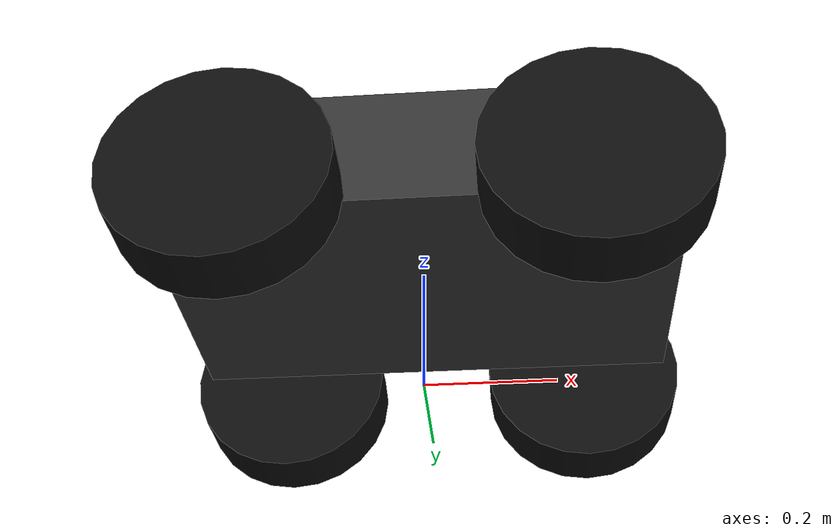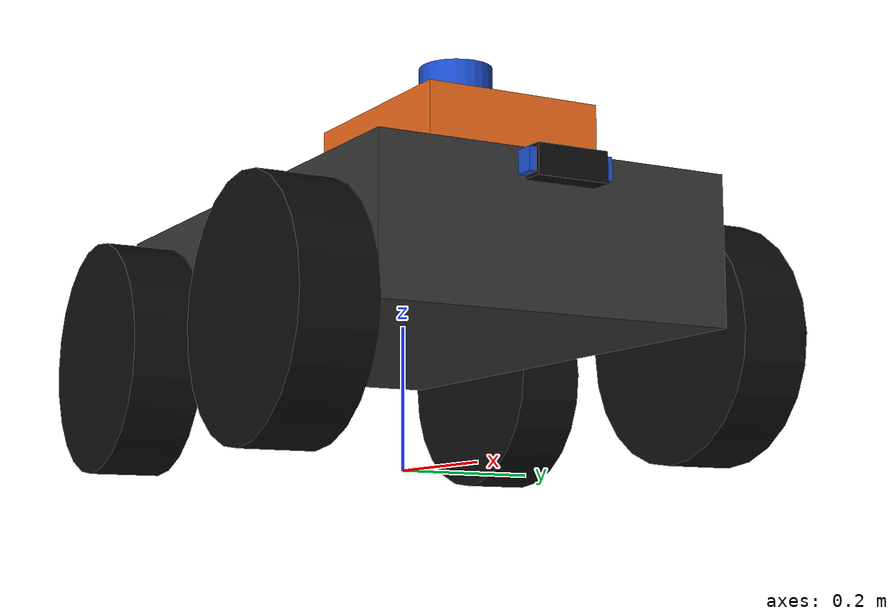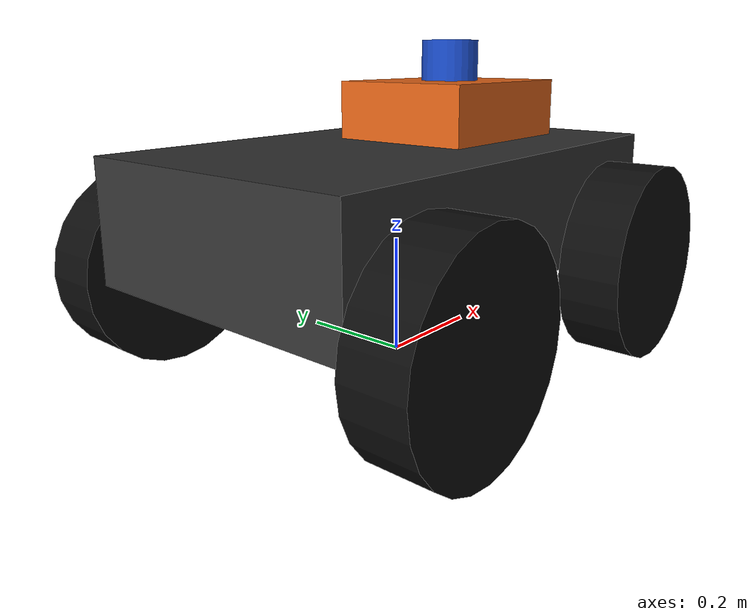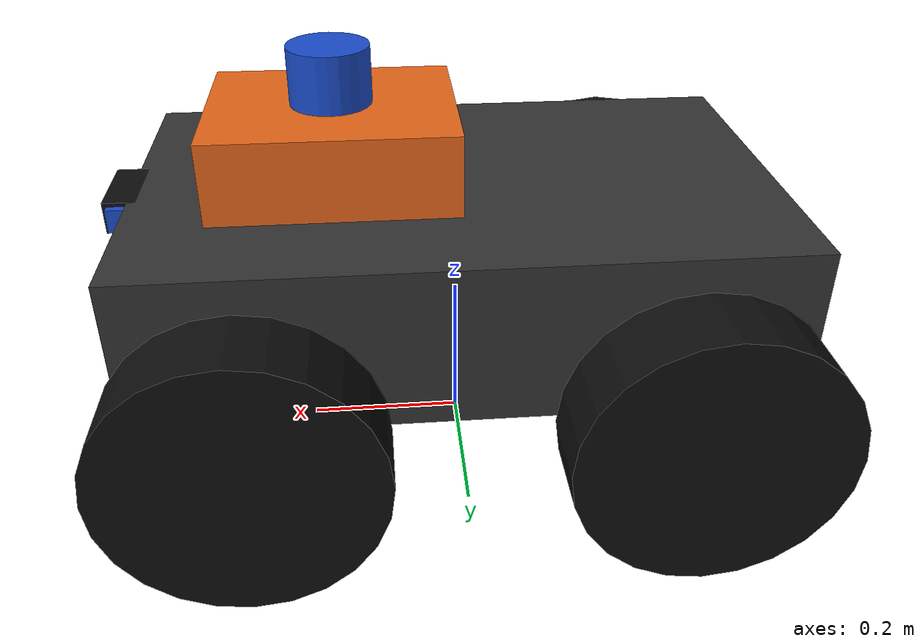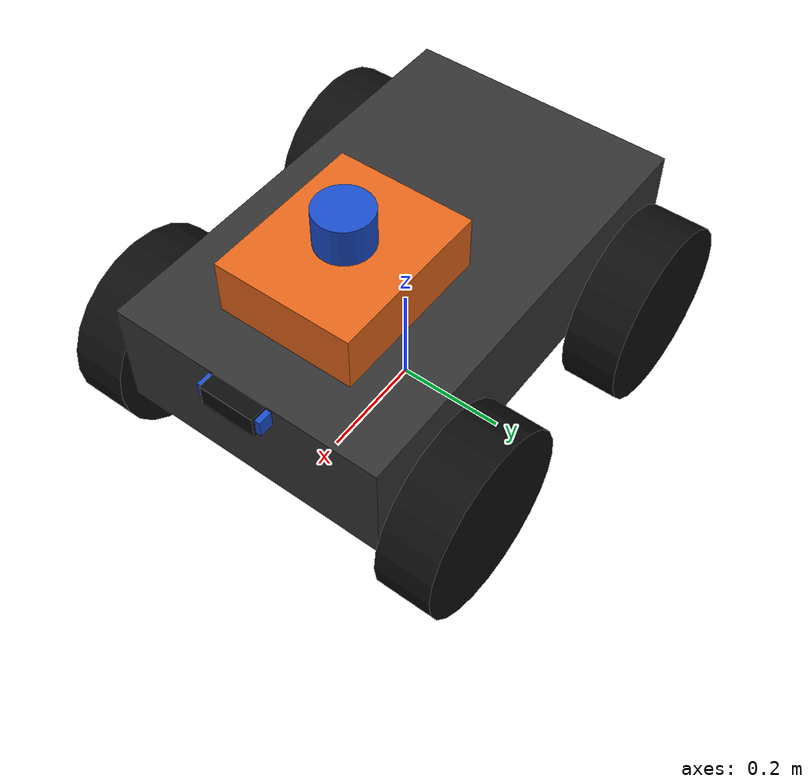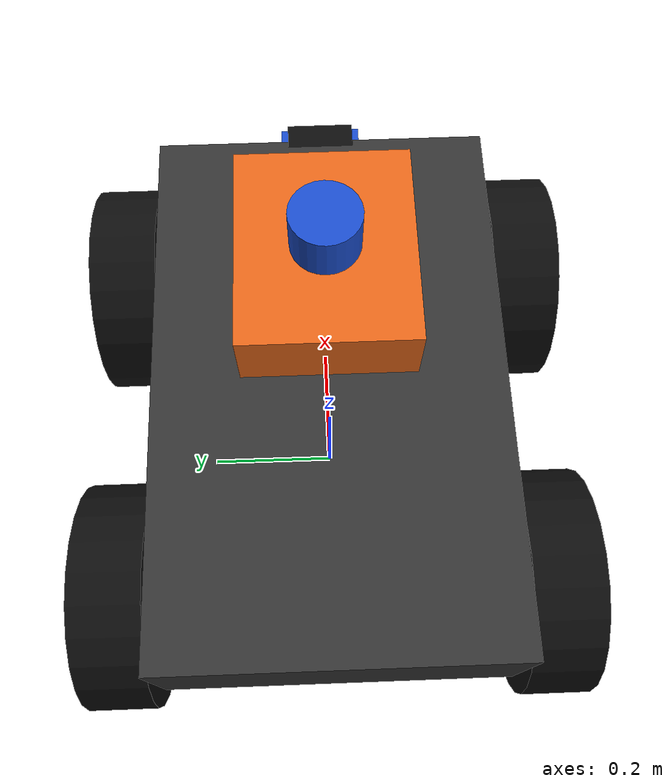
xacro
<?xml version="1.0"?>
<robot name="ugv_robot" xmlns:xacro="http://www.ros.org/wiki/xacro">

  <material name="dark_grey"><color rgba="0.2 0.2 0.2 1.0"/></material>
  <material name="accent_orange"><color rgba="0.9 0.4 0.1 1.0"/></material>
  <material name="black"><color rgba="0.05 0.05 0.05 1.0"/></material>
  <material name="sensor_blue"><color rgba="0.1 0.3 0.8 1.0"/></material>

  <!-- Base footprint & chassis -->
  <link name="base_footprint"/>

  <joint name="base_footprint_joint" type="fixed">
    <parent link="base_footprint"/>
    <child link="base_link"/>
    <origin xyz="0 0 0.165" rpy="0 0 0"/>
  </joint>

  <link name="base_link">
    <inertial>
      <mass value="25.0"/>
      <origin xyz="0 0 0.1" rpy="0 0 0"/>
      <inertia ixx="0.604" ixy="0" ixz="0" iyy="1.416" iyz="0" izz="1.854"/>
    </inertial>
    <visual>
      <origin xyz="0 0 0.1" rpy="0 0 0"/>
      <geometry><box size="0.8 0.5 0.2"/></geometry>
      <material name="dark_grey"/>
    </visual>
    <collision>
      <origin xyz="0 0 0.1" rpy="0 0 0"/>
      <geometry><box size="0.8 0.5 0.2"/></geometry>
    </collision>
    <visual>
      <origin xyz="0.15 0 0.25" rpy="0 0 0"/>
      <geometry><box size="0.3 0.25 0.1"/></geometry>
      <material name="accent_orange"/>
    </visual>
    <collision>
      <origin xyz="0.15 0 0.25" rpy="0 0 0"/>
      <geometry><box size="0.3 0.25 0.1"/></geometry>
    </collision>
  </link>

  <gazebo reference="base_link">
    <material>Gazebo/DarkGrey</material>
  </gazebo>

  <!-- 4 Continuous Wheels -->
  <xacro:macro name="wheel" params="prefix x_reflect y_reflect">
    <link name="${prefix}_wheel_link">
      <inertial>
        <mass value="3.0"/>
        <origin xyz="0 0 0" rpy="0 0 0"/>
        <inertia ixx="0.0229" ixy="0" ixz="0" iyy="0.0229" iyz="0" izz="0.0408"/>
      </inertial>
      <visual>
        <origin xyz="0 0 0" rpy="${pi/2} 0 0"/>
        <geometry><cylinder radius="0.165" length="0.1"/></geometry>
        <material name="black"/>
      </visual>
      <collision>
        <origin xyz="0 0 0" rpy="${pi/2} 0 0"/>
        <geometry><cylinder radius="0.165" length="0.1"/></geometry>
      </collision>
    </link>

    <joint name="${prefix}_wheel_joint" type="continuous">
      <parent link="base_link"/>
      <child link="${prefix}_wheel_link"/>
      <origin xyz="${x_reflect*0.26} ${y_reflect*0.31} 0.0" rpy="0 0 0"/>
      <axis xyz="0 1 0"/>
    </joint>

    <gazebo reference="${prefix}_wheel_link">
      <material>Gazebo/FlatBlack</material>
      <mu1>1.2</mu1>
      <mu2>1.0</mu2>
      <kp>1000000.0</kp>
      <kd>100.0</kd>
      <minDepth>0.005</minDepth>
    </gazebo>
  </xacro:macro>

  <xacro:wheel prefix="front_left"  x_reflect="1"  y_reflect="1"/>
  <xacro:wheel prefix="front_right" x_reflect="1"  y_reflect="-1"/>
  <xacro:wheel prefix="rear_left"   x_reflect="-1" y_reflect="1"/>
  <xacro:wheel prefix="rear_right"  x_reflect="-1" y_reflect="-1"/>

  <!-- ================= JOINT STATE PUBLISHER PLUGIN ================= -->
  <!-- Publishes the 4 wheel joint angles to /joint_states so robot_state_publisher can create TF -->
  <gazebo>
    <plugin name="ugv_joint_state" filename="libgazebo_ros_joint_state_publisher.so">
      <ros>
        <remapping>~/out:=joint_states</remapping>
      </ros>
      <update_rate>50</update_rate>
      <joint_name>front_left_wheel_joint</joint_name>
      <joint_name>front_right_wheel_joint</joint_name>
      <joint_name>rear_left_wheel_joint</joint_name>
      <joint_name>rear_right_wheel_joint</joint_name>
    </plugin>
  </gazebo>

  <!-- ================= DIFF DRIVE CONTROLLER ================= -->
  <gazebo>
    <plugin name="diff_drive_controller" filename="libgazebo_ros_diff_drive.so">
      <ros>
        <namespace>/</namespace>
        <remapping>cmd_vel:=cmd_vel</remapping>
        <remapping>odom:=odom</remapping>
      </ros>
      <update_rate>50</update_rate>
      <num_wheel_pairs>2</num_wheel_pairs>
      <left_joint>front_left_wheel_joint</left_joint>
      <right_joint>front_right_wheel_joint</right_joint>
      <left_joint>rear_left_wheel_joint</left_joint>
      <right_joint>rear_right_wheel_joint</right_joint>
      <wheel_separation>0.62</wheel_separation>
      <wheel_diameter>0.33</wheel_diameter>
      <max_wheel_torque>250.0</max_wheel_torque>
      <max_wheel_acceleration>3.0</max_wheel_acceleration>
      <publish_odom>true</publish_odom>
      <publish_odom_tf>false</publish_odom_tf>
      <publish_wheel_tf>false</publish_wheel_tf>
      <odometry_frame>odom</odometry_frame>
      <robot_base_frame>base_footprint</robot_base_frame>
    </plugin>
  </gazebo>

  <!-- ================= 2D LIDAR ================= -->
  <link name="lidar_link">
    <inertial>
      <mass value="0.4"/>
      <origin xyz="0 0 0" rpy="0 0 0"/>
      <inertia ixx="0.001" ixy="0" ixz="0" iyy="0.001" iyz="0" izz="0.001"/>
    </inertial>
    <visual>
      <origin xyz="0 0 0" rpy="0 0 0"/>
      <geometry><cylinder radius="0.05" length="0.07"/></geometry>
      <material name="sensor_blue"/>
    </visual>
    <collision>
      <origin xyz="0 0 0" rpy="0 0 0"/>
      <geometry><cylinder radius="0.05" length="0.07"/></geometry>
    </collision>
  </link>

  <joint name="lidar_joint" type="fixed">
    <parent link="base_link"/>
    <child link="lidar_link"/>
    <origin xyz="0.15 0 0.335" rpy="0 0 0"/>
  </joint>

  <gazebo reference="lidar_link">
    <material>Gazebo/Blue</material>
    <sensor name="lidar_sensor" type="ray">
      <always_on>true</always_on>
      <update_rate>20</update_rate>
      <ray>
        <scan>
          <horizontal>
            <samples>720</samples>
            <resolution>1</resolution>
            <min_angle>-3.14159</min_angle>
            <max_angle>3.14159</max_angle>
          </horizontal>
        </scan>
        <range>
          <min>0.15</min>
          <max>30.0</max>
          <resolution>0.01</resolution>
        </range>
      </ray>
      <plugin name="lidar_plugin" filename="libgazebo_ros_ray_sensor.so">
        <ros>
          <namespace>/</namespace>
          <remapping>~/out:=scan</remapping>
        </ros>
        <output_type>sensor_msgs/LaserScan</output_type>
        <frame_name>lidar_link</frame_name>
      </plugin>
    </sensor>
  </gazebo>

  <!-- ================= RGB CAMERA ================= -->
  <link name="camera_link">
    <inertial>
      <mass value="0.15"/>
      <origin xyz="0 0 0" rpy="0 0 0"/>
      <inertia ixx="0.0001" ixy="0" ixz="0" iyy="0.0001" iyz="0" izz="0.0001"/>
    </inertial>
    <visual>
      <origin xyz="0 0 0" rpy="0 0 0"/>
      <geometry><box size="0.04 0.1 0.04"/></geometry>
      <material name="black"/>
    </visual>
  </link>

  <joint name="camera_joint" type="fixed">
    <parent link="base_link"/>
    <child link="camera_link"/>
    <origin xyz="0.41 0 0.18" rpy="0 0 0"/>
  </joint>

  <link name="camera_optical_link"/>
  <joint name="camera_optical_joint" type="fixed">
    <parent link="camera_link"/>
    <child link="camera_optical_link"/>
    <origin xyz="0 0 0" rpy="${-pi/2} 0 ${-pi/2}"/>
  </joint>

  <gazebo reference="camera_link">
    <sensor name="rgb_camera" type="camera">
      <always_on>true</always_on>
      <update_rate>30</update_rate>
      <camera>
        <horizontal_fov>1.3962634</horizontal_fov>
        <image><width>640</width><height>480</height><format>R8G8B8</format></image>
        <clip><near>0.05</near><far>150</far></clip>
      </camera>
      <plugin name="camera_controller" filename="libgazebo_ros_camera.so">
        <ros>
          <namespace>/camera</namespace>
          <remapping>image_raw:=rgb_camera/image_raw</remapping>
          <remapping>camera_info:=rgb_camera/camera_info</remapping>
        </ros>
        <frame_name>camera_optical_link</frame_name>
      </plugin>
    </sensor>
  </gazebo>

  <!-- ================= DEPTH CAMERA ================= -->
  <link name="depth_camera_link">
    <inertial>
      <mass value="0.15"/>
      <origin xyz="0 0 0" rpy="0 0 0"/>
      <inertia ixx="0.0001" ixy="0" ixz="0" iyy="0.0001" iyz="0" izz="0.0001"/>
    </inertial>
    <visual>
      <origin xyz="0 0 0" rpy="0 0 0"/>
      <geometry><box size="0.03 0.12 0.03"/></geometry>
      <material name="sensor_blue"/>
    </visual>
  </link>

  <joint name="depth_camera_joint" type="fixed">
    <parent link="base_link"/>
    <child link="depth_camera_link"/>
    <origin xyz="0.41 0 0.18" rpy="0 0 0"/>
  </joint>

  <link name="depth_camera_optical_link"/>
  <joint name="depth_camera_optical_joint" type="fixed">
    <parent link="depth_camera_link"/>
    <child link="depth_camera_optical_link"/>
    <origin xyz="0 0 0" rpy="${-pi/2} 0 ${-pi/2}"/>
  </joint>

  <gazebo reference="depth_camera_link">
    <sensor name="depth_sensor" type="depth">
      <always_on>true</always_on>
      <update_rate>20</update_rate>
      <camera>
        <horizontal_fov>1.3962634</horizontal_fov>
        <image><width>640</width><height>480</height></image>
        <clip><near>0.05</near><far>30.0</far></clip>
      </camera>
      <plugin name="depth_camera_controller" filename="libgazebo_ros_camera.so">
        <ros>
          <namespace>/camera</namespace>
        </ros>
        <camera_name>depth</camera_name>
        <frame_name>depth_camera_optical_link</frame_name>
        <min_depth>0.1</min_depth>
        <max_depth>30.0</max_depth>
      </plugin>
    </sensor>
  </gazebo>

  <!-- ================= IMU ================= -->
  <link name="imu_link">
    <inertial>
      <mass value="0.05"/>
      <origin xyz="0 0 0" rpy="0 0 0"/>
      <inertia ixx="0.00001" ixy="0" ixz="0" iyy="0.00001" iyz="0" izz="0.00001"/>
    </inertial>
  </link>

  <joint name="imu_joint" type="fixed">
    <parent link="base_link"/>
    <child link="imu_link"/>
    <origin xyz="0 0 0.15" rpy="0 0 0"/>
  </joint>

  <gazebo reference="imu_link">
    <sensor name="imu_sensor" type="imu">
      <always_on>true</always_on>
      <update_rate>100</update_rate>
      <plugin name="imu_plugin" filename="libgazebo_ros_imu_sensor.so">
        <ros>
          <namespace>/</namespace>
          <remapping>~/out:=imu/data</remapping>
        </ros>
        <initial_orientation_as_reference>false</initial_orientation_as_reference>
        <frame_name>imu_link</frame_name>
      </plugin>
    </sensor>
  </gazebo>

</robot>
